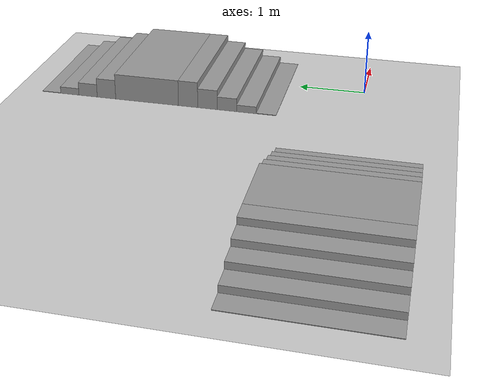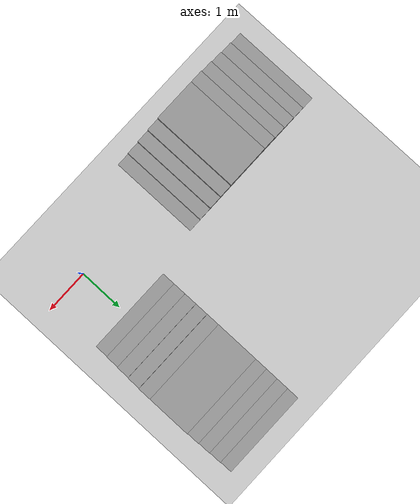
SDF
<sdf version="1.7">
 <world name="default">
  <model name="ground_plane">
   <static>1</static>
   <link name="link">
    <collision name="collision">
     <geometry><plane><normal>0 0 1</normal><size>100 100</size></plane></geometry>
     <surface><friction><ode><mu>100</mu><mu2>50</mu2></ode></friction></surface>
    </collision>
    <visual name="visual">
     <cast_shadows>0</cast_shadows>
     <geometry><plane><normal>0 0 1</normal><size>100 100</size></plane></geometry>
     <material>
      <script><uri>file://media/materials/scripts/gazebo.material</uri><name>Gazebo/Grey</name></script>
     </material>
    </visual>
   </link>
  </model>
  <model name="10cm">
   <link name="link_0">
    <inertial>
     <mass>1</mass>
     <inertia>
      <ixx>0.166667</ixx>
      <ixy>0</ixy>
      <ixz>0</ixz>
      <iyy>0.166667</iyy>
      <iyz>0</iyz>
      <izz>0.166667</izz>
     </inertia>
    </inertial>
    <pose>-1.665 0 -0.1 0 -0 0</pose>
    <kinematic>1</kinematic>
    <visual name="visual">
     <geometry><box><size>0.3 2 0.1</size></box></geometry>
     <material>
      <lighting>1</lighting>
      <script><uri>file://media/materials/scripts/gazebo.material</uri><name>Gazebo/Grey</name></script>
      <shader type="pixel"><normal_map>__default__</normal_map></shader>
      <ambient>0.3 0.3 0.3 1</ambient>
      <diffuse>0.7 0.7 0.7 1</diffuse>
      <specular>0.01 0.01 0.01 1</specular>
      <emissive>0 0 0 1</emissive>
     </material>
    </visual>
    <collision name="collision">
     <geometry><box><size>0.3 2 0.1</size></box></geometry>
     <surface>
      <friction>
       <ode><mu>1</mu><mu2>1</mu2><fdir1>0 0 0</fdir1><slip1>0</slip1><slip2>0</slip2></ode>
       <torsional>
        <coefficient>1</coefficient>
        <patch_radius>0</patch_radius>
        <surface_radius>0</surface_radius>
        <use_patch_radius>1</use_patch_radius>
        <ode><slip>0</slip></ode>
       </torsional>
      </friction>
      <bounce><restitution_coefficient>0</restitution_coefficient><threshold>1e+06</threshold></bounce>
      <contact>
       <collide_without_contact>0</collide_without_contact>
       <collide_without_contact_bitmask>1</collide_without_contact_bitmask>
       <collide_bitmask>1</collide_bitmask>
       <ode>
        <soft_cfm>0</soft_cfm>
        <soft_erp>0.2</soft_erp>
        <kp>1e+13</kp>
        <kd>1</kd>
        <max_vel>0.01</max_vel>
        <min_depth>0</min_depth>
       </ode>
       <bullet>
        <split_impulse>1</split_impulse>
        <split_impulse_penetration_threshold>-0.01</split_impulse_penetration_threshold>
        <soft_cfm>0</soft_cfm>
        <soft_erp>0.2</soft_erp>
        <kp>1e+13</kp>
        <kd>1</kd>
       </bullet>
      </contact>
     </surface>
    </collision>
   </link>
   <link name="link_0_clone">
    <inertial>
     <mass>1</mass>
     <inertia>
      <ixx>0.166667</ixx>
      <ixy>0</ixy>
      <ixz>0</ixz>
      <iyy>0.166667</iyy>
      <iyz>0</iyz>
      <izz>0.166667</izz>
     </inertia>
    </inertial>
    <pose>-1.365 0 -0.05 0 -0 0</pose>
    <kinematic>1</kinematic>
    <visual name="visual">
     <geometry><box><size>0.3 2 0.2</size></box></geometry>
     <material>
      <lighting>1</lighting>
      <script><uri>file://media/materials/scripts/gazebo.material</uri><name>Gazebo/Grey</name></script>
      <shader type="pixel"><normal_map>__default__</normal_map></shader>
      <ambient>0.3 0.3 0.3 1</ambient>
      <diffuse>0.7 0.7 0.7 1</diffuse>
      <specular>0.01 0.01 0.01 1</specular>
      <emissive>0 0 0 1</emissive>
     </material>
    </visual>
    <collision name="collision">
     <geometry><box><size>0.3 2 0.2</size></box></geometry>
     <surface>
      <friction>
       <ode><mu>1</mu><mu2>1</mu2><fdir1>0 0 0</fdir1><slip1>0</slip1><slip2>0</slip2></ode>
       <torsional>
        <coefficient>1</coefficient>
        <patch_radius>0</patch_radius>
        <surface_radius>0</surface_radius>
        <use_patch_radius>1</use_patch_radius>
        <ode><slip>0</slip></ode>
       </torsional>
      </friction>
      <bounce><restitution_coefficient>0</restitution_coefficient><threshold>1e+06</threshold></bounce>
      <contact>
       <collide_without_contact>0</collide_without_contact>
       <collide_without_contact_bitmask>1</collide_without_contact_bitmask>
       <collide_bitmask>1</collide_bitmask>
       <ode>
        <soft_cfm>0</soft_cfm>
        <soft_erp>0.2</soft_erp>
        <kp>1e+13</kp>
        <kd>1</kd>
        <max_vel>0.01</max_vel>
        <min_depth>0</min_depth>
       </ode>
       <bullet>
        <split_impulse>1</split_impulse>
        <split_impulse_penetration_threshold>-0.01</split_impulse_penetration_threshold>
        <soft_cfm>0</soft_cfm>
        <soft_erp>0.2</soft_erp>
        <kp>1e+13</kp>
        <kd>1</kd>
       </bullet>
      </contact>
     </surface>
    </collision>
   </link>
   <link name="link_0_clone_0">
    <inertial>
     <mass>1</mass>
     <inertia>
      <ixx>0.166667</ixx>
      <ixy>0</ixy>
      <ixz>0</ixz>
      <iyy>0.166667</iyy>
      <iyz>0</iyz>
      <izz>0.166667</izz>
     </inertia>
    </inertial>
    <pose>1.735 0 -0.1 0 -0 0</pose>
    <kinematic>1</kinematic>
    <visual name="visual">
     <geometry><box><size>0.3 2 0.1</size></box></geometry>
     <material>
      <lighting>1</lighting>
      <script><uri>file://media/materials/scripts/gazebo.material</uri><name>Gazebo/Grey</name></script>
      <shader type="pixel"><normal_map>__default__</normal_map></shader>
      <ambient>0.3 0.3 0.3 1</ambient>
      <diffuse>0.7 0.7 0.7 1</diffuse>
      <specular>0.01 0.01 0.01 1</specular>
      <emissive>0 0 0 1</emissive>
     </material>
    </visual>
    <collision name="collision">
     <geometry><box><size>0.3 2 0.1</size></box></geometry>
     <surface>
      <friction>
       <ode><mu>1</mu><mu2>1</mu2><fdir1>0 0 0</fdir1><slip1>0</slip1><slip2>0</slip2></ode>
       <torsional>
        <coefficient>1</coefficient>
        <patch_radius>0</patch_radius>
        <surface_radius>0</surface_radius>
        <use_patch_radius>1</use_patch_radius>
        <ode><slip>0</slip></ode>
       </torsional>
      </friction>
      <bounce><restitution_coefficient>0</restitution_coefficient><threshold>1e+06</threshold></bounce>
      <contact>
       <collide_without_contact>0</collide_without_contact>
       <collide_without_contact_bitmask>1</collide_without_contact_bitmask>
       <collide_bitmask>1</collide_bitmask>
       <ode>
        <soft_cfm>0</soft_cfm>
        <soft_erp>0.2</soft_erp>
        <kp>1e+13</kp>
        <kd>1</kd>
        <max_vel>0.01</max_vel>
        <min_depth>0</min_depth>
       </ode>
       <bullet>
        <split_impulse>1</split_impulse>
        <split_impulse_penetration_threshold>-0.01</split_impulse_penetration_threshold>
        <soft_cfm>0</soft_cfm>
        <soft_erp>0.2</soft_erp>
        <kp>1e+13</kp>
        <kd>1</kd>
       </bullet>
      </contact>
     </surface>
    </collision>
   </link>
   <link name="link_0_clone_clone">
    <inertial>
     <mass>1</mass>
     <inertia>
      <ixx>0.166667</ixx>
      <ixy>0</ixy>
      <ixz>0</ixz>
      <iyy>0.166667</iyy>
      <iyz>0</iyz>
      <izz>0.166667</izz>
     </inertia>
    </inertial>
    <pose>-1.065 0 0 0 -0 0</pose>
    <kinematic>1</kinematic>
    <visual name="visual">
     <geometry><box><size>0.3 2 0.3</size></box></geometry>
     <material>
      <lighting>1</lighting>
      <script><uri>file://media/materials/scripts/gazebo.material</uri><name>Gazebo/Grey</name></script>
      <shader type="pixel"><normal_map>__default__</normal_map></shader>
      <ambient>0.3 0.3 0.3 1</ambient>
      <diffuse>0.7 0.7 0.7 1</diffuse>
      <specular>0.01 0.01 0.01 1</specular>
      <emissive>0 0 0 1</emissive>
     </material>
    </visual>
    <collision name="collision">
     <geometry><box><size>0.3 2 0.3</size></box></geometry>
     <surface>
      <friction>
       <ode><mu>1</mu><mu2>1</mu2><fdir1>0 0 0</fdir1><slip1>0</slip1><slip2>0</slip2></ode>
       <torsional>
        <coefficient>1</coefficient>
        <patch_radius>0</patch_radius>
        <surface_radius>0</surface_radius>
        <use_patch_radius>1</use_patch_radius>
        <ode><slip>0</slip></ode>
       </torsional>
      </friction>
      <bounce><restitution_coefficient>0</restitution_coefficient><threshold>1e+06</threshold></bounce>
      <contact>
       <collide_without_contact>0</collide_without_contact>
       <collide_without_contact_bitmask>1</collide_without_contact_bitmask>
       <collide_bitmask>1</collide_bitmask>
       <ode>
        <soft_cfm>0</soft_cfm>
        <soft_erp>0.2</soft_erp>
        <kp>1e+13</kp>
        <kd>1</kd>
        <max_vel>0.01</max_vel>
        <min_depth>0</min_depth>
       </ode>
       <bullet>
        <split_impulse>1</split_impulse>
        <split_impulse_penetration_threshold>-0.01</split_impulse_penetration_threshold>
        <soft_cfm>0</soft_cfm>
        <soft_erp>0.2</soft_erp>
        <kp>1e+13</kp>
        <kd>1</kd>
       </bullet>
      </contact>
     </surface>
    </collision>
   </link>
   <link name="link_0_clone_clone_0">
    <inertial>
     <mass>1</mass>
     <inertia>
      <ixx>0.166667</ixx>
      <ixy>0</ixy>
      <ixz>0</ixz>
      <iyy>0.166667</iyy>
      <iyz>0</iyz>
      <izz>0.166667</izz>
     </inertia>
    </inertial>
    <pose>1.435 0 -0.05 0 -0 0</pose>
    <kinematic>1</kinematic>
    <visual name="visual">
     <geometry><box><size>0.3 2 0.2</size></box></geometry>
     <material>
      <lighting>1</lighting>
      <script><uri>file://media/materials/scripts/gazebo.material</uri><name>Gazebo/Grey</name></script>
      <shader type="pixel"><normal_map>__default__</normal_map></shader>
      <ambient>0.3 0.3 0.3 1</ambient>
      <diffuse>0.7 0.7 0.7 1</diffuse>
      <specular>0.01 0.01 0.01 1</specular>
      <emissive>0 0 0 1</emissive>
     </material>
    </visual>
    <collision name="collision">
     <geometry><box><size>0.3 2 0.2</size></box></geometry>
     <surface>
      <friction>
       <ode><mu>1</mu><mu2>1</mu2><fdir1>0 0 0</fdir1><slip1>0</slip1><slip2>0</slip2></ode>
       <torsional>
        <coefficient>1</coefficient>
        <patch_radius>0</patch_radius>
        <surface_radius>0</surface_radius>
        <use_patch_radius>1</use_patch_radius>
        <ode><slip>0</slip></ode>
       </torsional>
      </friction>
      <bounce><restitution_coefficient>0</restitution_coefficient><threshold>1e+06</threshold></bounce>
      <contact>
       <collide_without_contact>0</collide_without_contact>
       <collide_without_contact_bitmask>1</collide_without_contact_bitmask>
       <collide_bitmask>1</collide_bitmask>
       <ode>
        <soft_cfm>0</soft_cfm>
        <soft_erp>0.2</soft_erp>
        <kp>1e+13</kp>
        <kd>1</kd>
        <max_vel>0.01</max_vel>
        <min_depth>0</min_depth>
       </ode>
       <bullet>
        <split_impulse>1</split_impulse>
        <split_impulse_penetration_threshold>-0.01</split_impulse_penetration_threshold>
        <soft_cfm>0</soft_cfm>
        <soft_erp>0.2</soft_erp>
        <kp>1e+13</kp>
        <kd>1</kd>
       </bullet>
      </contact>
     </surface>
    </collision>
   </link>
   <link name="link_0_clone_clone_clone">
    <inertial>
     <mass>1</mass>
     <inertia>
      <ixx>0.166667</ixx>
      <ixy>0</ixy>
      <ixz>0</ixz>
      <iyy>0.166667</iyy>
      <iyz>0</iyz>
      <izz>0.166667</izz>
     </inertia>
    </inertial>
    <pose>-0.765 0 0.05 0 -0 0</pose>
    <kinematic>1</kinematic>
    <visual name="visual">
     <geometry><box><size>0.3 2 0.4</size></box></geometry>
     <material>
      <lighting>1</lighting>
      <script><uri>file://media/materials/scripts/gazebo.material</uri><name>Gazebo/Grey</name></script>
      <shader type="pixel"><normal_map>__default__</normal_map></shader>
      <ambient>0.3 0.3 0.3 1</ambient>
      <diffuse>0.7 0.7 0.7 1</diffuse>
      <specular>0.01 0.01 0.01 1</specular>
      <emissive>0 0 0 1</emissive>
     </material>
    </visual>
    <collision name="collision">
     <geometry><box><size>0.3 2 0.4</size></box></geometry>
     <surface>
      <friction>
       <ode><mu>1</mu><mu2>1</mu2><fdir1>0 0 0</fdir1><slip1>0</slip1><slip2>0</slip2></ode>
       <torsional>
        <coefficient>1</coefficient>
        <patch_radius>0</patch_radius>
        <surface_radius>0</surface_radius>
        <use_patch_radius>1</use_patch_radius>
        <ode><slip>0</slip></ode>
       </torsional>
      </friction>
      <bounce><restitution_coefficient>0</restitution_coefficient><threshold>1e+06</threshold></bounce>
      <contact>
       <collide_without_contact>0</collide_without_contact>
       <collide_without_contact_bitmask>1</collide_without_contact_bitmask>
       <collide_bitmask>1</collide_bitmask>
       <ode>
        <soft_cfm>0</soft_cfm>
        <soft_erp>0.2</soft_erp>
        <kp>1e+13</kp>
        <kd>1</kd>
        <max_vel>0.01</max_vel>
        <min_depth>0</min_depth>
       </ode>
       <bullet>
        <split_impulse>1</split_impulse>
        <split_impulse_penetration_threshold>-0.01</split_impulse_penetration_threshold>
        <soft_cfm>0</soft_cfm>
        <soft_erp>0.2</soft_erp>
        <kp>1e+13</kp>
        <kd>1</kd>
       </bullet>
      </contact>
     </surface>
    </collision>
   </link>
   <link name="link_0_clone_clone_clone_0">
    <inertial>
     <mass>1</mass>
     <inertia>
      <ixx>0.166667</ixx>
      <ixy>0</ixy>
      <ixz>0</ixz>
      <iyy>0.166667</iyy>
      <iyz>0</iyz>
      <izz>0.166667</izz>
     </inertia>
    </inertial>
    <pose>1.135 0 0 0 -0 0</pose>
    <kinematic>1</kinematic>
    <visual name="visual">
     <geometry><box><size>0.3 2 0.3</size></box></geometry>
     <material>
      <lighting>1</lighting>
      <script><uri>file://media/materials/scripts/gazebo.material</uri><name>Gazebo/Grey</name></script>
      <shader type="pixel"><normal_map>__default__</normal_map></shader>
      <ambient>0.3 0.3 0.3 1</ambient>
      <diffuse>0.7 0.7 0.7 1</diffuse>
      <specular>0.01 0.01 0.01 1</specular>
      <emissive>0 0 0 1</emissive>
     </material>
    </visual>
    <collision name="collision">
     <geometry><box><size>0.3 2 0.3</size></box></geometry>
     <surface>
      <friction>
       <ode><mu>1</mu><mu2>1</mu2><fdir1>0 0 0</fdir1><slip1>0</slip1><slip2>0</slip2></ode>
       <torsional>
        <coefficient>1</coefficient>
        <patch_radius>0</patch_radius>
        <surface_radius>0</surface_radius>
        <use_patch_radius>1</use_patch_radius>
        <ode><slip>0</slip></ode>
       </torsional>
      </friction>
      <bounce><restitution_coefficient>0</restitution_coefficient><threshold>1e+06</threshold></bounce>
      <contact>
       <collide_without_contact>0</collide_without_contact>
       <collide_without_contact_bitmask>1</collide_without_contact_bitmask>
       <collide_bitmask>1</collide_bitmask>
       <ode>
        <soft_cfm>0</soft_cfm>
        <soft_erp>0.2</soft_erp>
        <kp>1e+13</kp>
        <kd>1</kd>
        <max_vel>0.01</max_vel>
        <min_depth>0</min_depth>
       </ode>
       <bullet>
        <split_impulse>1</split_impulse>
        <split_impulse_penetration_threshold>-0.01</split_impulse_penetration_threshold>
        <soft_cfm>0</soft_cfm>
        <soft_erp>0.2</soft_erp>
        <kp>1e+13</kp>
        <kd>1</kd>
       </bullet>
      </contact>
     </surface>
    </collision>
   </link>
   <link name="link_0_clone_clone_clone_clone">
    <inertial>
     <mass>1</mass>
     <inertia>
      <ixx>0.166667</ixx>
      <ixy>0</ixy>
      <ixz>0</ixz>
      <iyy>0.166667</iyy>
      <iyz>0</iyz>
      <izz>0.166667</izz>
     </inertia>
    </inertial>
    <pose>-0.465 0 0.1 0 -0 0</pose>
    <kinematic>1</kinematic>
    <visual name="visual">
     <geometry><box><size>0.3 2 0.5</size></box></geometry>
     <material>
      <lighting>1</lighting>
      <script><uri>file://media/materials/scripts/gazebo.material</uri><name>Gazebo/Grey</name></script>
      <shader type="pixel"><normal_map>__default__</normal_map></shader>
      <ambient>0.3 0.3 0.3 1</ambient>
      <diffuse>0.7 0.7 0.7 1</diffuse>
      <specular>0.01 0.01 0.01 1</specular>
      <emissive>0 0 0 1</emissive>
     </material>
    </visual>
    <collision name="collision">
     <geometry><box><size>0.3 2 0.5</size></box></geometry>
     <surface>
      <friction>
       <ode><mu>1</mu><mu2>1</mu2><fdir1>0 0 0</fdir1><slip1>0</slip1><slip2>0</slip2></ode>
       <torsional>
        <coefficient>1</coefficient>
        <patch_radius>0</patch_radius>
        <surface_radius>0</surface_radius>
        <use_patch_radius>1</use_patch_radius>
        <ode><slip>0</slip></ode>
       </torsional>
      </friction>
      <bounce><restitution_coefficient>0</restitution_coefficient><threshold>1e+06</threshold></bounce>
      <contact>
       <collide_without_contact>0</collide_without_contact>
       <collide_without_contact_bitmask>1</collide_without_contact_bitmask>
       <collide_bitmask>1</collide_bitmask>
       <ode>
        <soft_cfm>0</soft_cfm>
        <soft_erp>0.2</soft_erp>
        <kp>1e+13</kp>
        <kd>1</kd>
        <max_vel>0.01</max_vel>
        <min_depth>0</min_depth>
       </ode>
       <bullet>
        <split_impulse>1</split_impulse>
        <split_impulse_penetration_threshold>-0.01</split_impulse_penetration_threshold>
        <soft_cfm>0</soft_cfm>
        <soft_erp>0.2</soft_erp>
        <kp>1e+13</kp>
        <kd>1</kd>
       </bullet>
      </contact>
     </surface>
    </collision>
   </link>
   <link name="link_0_clone_clone_clone_clone_0">
    <inertial>
     <mass>1</mass>
     <inertia>
      <ixx>0.166667</ixx>
      <ixy>0</ixy>
      <ixz>0</ixz>
      <iyy>0.166667</iyy>
      <iyz>0</iyz>
      <izz>0.166667</izz>
     </inertia>
    </inertial>
    <pose>0.835 0 0.05 0 -0 0</pose>
    <kinematic>1</kinematic>
    <visual name="visual">
     <geometry><box><size>0.3 2 0.4</size></box></geometry>
     <material>
      <lighting>1</lighting>
      <script><uri>file://media/materials/scripts/gazebo.material</uri><name>Gazebo/Grey</name></script>
      <shader type="pixel"><normal_map>__default__</normal_map></shader>
      <ambient>0.3 0.3 0.3 1</ambient>
      <diffuse>0.7 0.7 0.7 1</diffuse>
      <specular>0.01 0.01 0.01 1</specular>
      <emissive>0 0 0 1</emissive>
     </material>
    </visual>
    <collision name="collision">
     <geometry><box><size>0.3 2 0.4</size></box></geometry>
     <surface>
      <friction>
       <ode><mu>1</mu><mu2>1</mu2><fdir1>0 0 0</fdir1><slip1>0</slip1><slip2>0</slip2></ode>
       <torsional>
        <coefficient>1</coefficient>
        <patch_radius>0</patch_radius>
        <surface_radius>0</surface_radius>
        <use_patch_radius>1</use_patch_radius>
        <ode><slip>0</slip></ode>
       </torsional>
      </friction>
      <bounce><restitution_coefficient>0</restitution_coefficient><threshold>1e+06</threshold></bounce>
      <contact>
       <collide_without_contact>0</collide_without_contact>
       <collide_without_contact_bitmask>1</collide_without_contact_bitmask>
       <collide_bitmask>1</collide_bitmask>
       <ode>
        <soft_cfm>0</soft_cfm>
        <soft_erp>0.2</soft_erp>
        <kp>1e+13</kp>
        <kd>1</kd>
        <max_vel>0.01</max_vel>
        <min_depth>0</min_depth>
       </ode>
       <bullet>
        <split_impulse>1</split_impulse>
        <split_impulse_penetration_threshold>-0.01</split_impulse_penetration_threshold>
        <soft_cfm>0</soft_cfm>
        <soft_erp>0.2</soft_erp>
        <kp>1e+13</kp>
        <kd>1</kd>
       </bullet>
      </contact>
     </surface>
    </collision>
   </link>
   <link name="link_0_clone_clone_clone_clone_clone">
    <inertial>
     <mass>1</mass>
     <inertia>
      <ixx>0.166667</ixx>
      <ixy>0</ixy>
      <ixz>0</ixz>
      <iyy>0.166667</iyy>
      <iyz>0</iyz>
      <izz>0.166667</izz>
     </inertia>
    </inertial>
    <pose>0.185 0 0.1 0 -0 0</pose>
    <kinematic>1</kinematic>
    <visual name="visual">
     <geometry><box><size>1 2 0.5</size></box></geometry>
     <material>
      <lighting>1</lighting>
      <script><uri>file://media/materials/scripts/gazebo.material</uri><name>Gazebo/Grey</name></script>
      <shader type="pixel"><normal_map>__default__</normal_map></shader>
      <ambient>0.3 0.3 0.3 1</ambient>
      <diffuse>0.7 0.7 0.7 1</diffuse>
      <specular>0.01 0.01 0.01 1</specular>
      <emissive>0 0 0 1</emissive>
     </material>
    </visual>
    <collision name="collision">
     <geometry><box><size>1 2 0.5</size></box></geometry>
     <surface>
      <friction>
       <ode><mu>1</mu><mu2>1</mu2><fdir1>0 0 0</fdir1><slip1>0</slip1><slip2>0</slip2></ode>
       <torsional>
        <coefficient>1</coefficient>
        <patch_radius>0</patch_radius>
        <surface_radius>0</surface_radius>
        <use_patch_radius>1</use_patch_radius>
        <ode><slip>0</slip></ode>
       </torsional>
      </friction>
      <bounce><restitution_coefficient>0</restitution_coefficient><threshold>1e+06</threshold></bounce>
      <contact>
       <collide_without_contact>0</collide_without_contact>
       <collide_without_contact_bitmask>1</collide_without_contact_bitmask>
       <collide_bitmask>1</collide_bitmask>
       <ode>
        <soft_cfm>0</soft_cfm>
        <soft_erp>0.2</soft_erp>
        <kp>1e+13</kp>
        <kd>1</kd>
        <max_vel>0.01</max_vel>
        <min_depth>0</min_depth>
       </ode>
       <bullet>
        <split_impulse>1</split_impulse>
        <split_impulse_penetration_threshold>-0.01</split_impulse_penetration_threshold>
        <soft_cfm>0</soft_cfm>
        <soft_erp>0.2</soft_erp>
        <kp>1e+13</kp>
        <kd>1</kd>
       </bullet>
      </contact>
     </surface>
    </collision>
   </link>
   <static>0</static>
   <pose>-0.1 3 0.05 0 -0 1.57</pose>
  </model>
  <model name="10cm_0">
   <link name="link_0">
    <inertial>
     <mass>1</mass>
     <inertia>
      <ixx>0.166667</ixx>
      <ixy>0</ixy>
      <ixz>0</ixz>
      <iyy>0.166667</iyy>
      <iyz>0</iyz>
      <izz>0.166667</izz>
     </inertia>
    </inertial>
    <pose>-1.665 0 -0.1 0 -0 0</pose>
    <kinematic>1</kinematic>
    <visual name="visual">
     <geometry><box><size>0.3 2 0.1</size></box></geometry>
     <material>
      <lighting>1</lighting>
      <script><uri>file://media/materials/scripts/gazebo.material</uri><name>Gazebo/Grey</name></script>
      <shader type="pixel"><normal_map>__default__</normal_map></shader>
      <ambient>0.3 0.3 0.3 1</ambient>
      <diffuse>0.7 0.7 0.7 1</diffuse>
      <specular>0.01 0.01 0.01 1</specular>
      <emissive>0 0 0 1</emissive>
     </material>
    </visual>
    <collision name="collision">
     <geometry><box><size>0.3 2 0.1</size></box></geometry>
     <surface>
      <friction>
       <ode><mu>1</mu><mu2>1</mu2><fdir1>0 0 0</fdir1><slip1>0</slip1><slip2>0</slip2></ode>
       <torsional>
        <coefficient>1</coefficient>
        <patch_radius>0</patch_radius>
        <surface_radius>0</surface_radius>
        <use_patch_radius>1</use_patch_radius>
        <ode><slip>0</slip></ode>
       </torsional>
      </friction>
      <bounce><restitution_coefficient>0</restitution_coefficient><threshold>1e+06</threshold></bounce>
      <contact>
       <collide_without_contact>0</collide_without_contact>
       <collide_without_contact_bitmask>1</collide_without_contact_bitmask>
       <collide_bitmask>1</collide_bitmask>
       <ode>
        <soft_cfm>0</soft_cfm>
        <soft_erp>0.2</soft_erp>
        <kp>1e+13</kp>
        <kd>1</kd>
        <max_vel>0.01</max_vel>
        <min_depth>0</min_depth>
       </ode>
       <bullet>
        <split_impulse>1</split_impulse>
        <split_impulse_penetration_threshold>-0.01</split_impulse_penetration_threshold>
        <soft_cfm>0</soft_cfm>
        <soft_erp>0.2</soft_erp>
        <kp>1e+13</kp>
        <kd>1</kd>
       </bullet>
      </contact>
     </surface>
    </collision>
   </link>
   <link name="link_0_clone">
    <inertial>
     <mass>1</mass>
     <inertia>
      <ixx>0.166667</ixx>
      <ixy>0</ixy>
      <ixz>0</ixz>
      <iyy>0.166667</iyy>
      <iyz>0</iyz>
      <izz>0.166667</izz>
     </inertia>
    </inertial>
    <pose>-1.365 0 -0.05 0 -0 0</pose>
    <kinematic>1</kinematic>
    <visual name="visual">
     <geometry><box><size>0.3 2 0.2</size></box></geometry>
     <material>
      <lighting>1</lighting>
      <script><uri>file://media/materials/scripts/gazebo.material</uri><name>Gazebo/Grey</name></script>
      <shader type="pixel"><normal_map>__default__</normal_map></shader>
      <ambient>0.3 0.3 0.3 1</ambient>
      <diffuse>0.7 0.7 0.7 1</diffuse>
      <specular>0.01 0.01 0.01 1</specular>
      <emissive>0 0 0 1</emissive>
     </material>
    </visual>
    <collision name="collision">
     <geometry><box><size>0.3 2 0.2</size></box></geometry>
     <surface>
      <friction>
       <ode><mu>1</mu><mu2>1</mu2><fdir1>0 0 0</fdir1><slip1>0</slip1><slip2>0</slip2></ode>
       <torsional>
        <coefficient>1</coefficient>
        <patch_radius>0</patch_radius>
        <surface_radius>0</surface_radius>
        <use_patch_radius>1</use_patch_radius>
        <ode><slip>0</slip></ode>
       </torsional>
      </friction>
      <bounce><restitution_coefficient>0</restitution_coefficient><threshold>1e+06</threshold></bounce>
      <contact>
       <collide_without_contact>0</collide_without_contact>
       <collide_without_contact_bitmask>1</collide_without_contact_bitmask>
       <collide_bitmask>1</collide_bitmask>
       <ode>
        <soft_cfm>0</soft_cfm>
        <soft_erp>0.2</soft_erp>
        <kp>1e+13</kp>
        <kd>1</kd>
        <max_vel>0.01</max_vel>
        <min_depth>0</min_depth>
       </ode>
       <bullet>
        <split_impulse>1</split_impulse>
        <split_impulse_penetration_threshold>-0.01</split_impulse_penetration_threshold>
        <soft_cfm>0</soft_cfm>
        <soft_erp>0.2</soft_erp>
        <kp>1e+13</kp>
        <kd>1</kd>
       </bullet>
      </contact>
     </surface>
    </collision>
   </link>
   <link name="link_0_clone_0">
    <inertial>
     <mass>1</mass>
     <inertia>
      <ixx>0.166667</ixx>
      <ixy>0</ixy>
      <ixz>0</ixz>
      <iyy>0.166667</iyy>
      <iyz>0</iyz>
      <izz>0.166667</izz>
     </inertia>
    </inertial>
    <pose>1.735 0 -0.1 0 -0 0</pose>
    <kinematic>1</kinematic>
    <visual name="visual">
     <geometry><box><size>0.3 2 0.1</size></box></geometry>
     <material>
      <lighting>1</lighting>
      <script><uri>file://media/materials/scripts/gazebo.material</uri><name>Gazebo/Grey</name></script>
      <shader type="pixel"><normal_map>__default__</normal_map></shader>
      <ambient>0.3 0.3 0.3 1</ambient>
      <diffuse>0.7 0.7 0.7 1</diffuse>
      <specular>0.01 0.01 0.01 1</specular>
      <emissive>0 0 0 1</emissive>
     </material>
    </visual>
    <collision name="collision">
     <geometry><box><size>0.3 2 0.1</size></box></geometry>
     <surface>
      <friction>
       <ode><mu>1</mu><mu2>1</mu2><fdir1>0 0 0</fdir1><slip1>0</slip1><slip2>0</slip2></ode>
       <torsional>
        <coefficient>1</coefficient>
        <patch_radius>0</patch_radius>
        <surface_radius>0</surface_radius>
        <use_patch_radius>1</use_patch_radius>
        <ode><slip>0</slip></ode>
       </torsional>
      </friction>
      <bounce><restitution_coefficient>0</restitution_coefficient><threshold>1e+06</threshold></bounce>
      <contact>
       <collide_without_contact>0</collide_without_contact>
       <collide_without_contact_bitmask>1</collide_without_contact_bitmask>
       <collide_bitmask>1</collide_bitmask>
       <ode>
        <soft_cfm>0</soft_cfm>
        <soft_erp>0.2</soft_erp>
        <kp>1e+13</kp>
        <kd>1</kd>
        <max_vel>0.01</max_vel>
        <min_depth>0</min_depth>
       </ode>
       <bullet>
        <split_impulse>1</split_impulse>
        <split_impulse_penetration_threshold>-0.01</split_impulse_penetration_threshold>
        <soft_cfm>0</soft_cfm>
        <soft_erp>0.2</soft_erp>
        <kp>1e+13</kp>
        <kd>1</kd>
       </bullet>
      </contact>
     </surface>
    </collision>
   </link>
   <link name="link_0_clone_clone">
    <inertial>
     <mass>1</mass>
     <inertia>
      <ixx>0.166667</ixx>
      <ixy>0</ixy>
      <ixz>0</ixz>
      <iyy>0.166667</iyy>
      <iyz>0</iyz>
      <izz>0.166667</izz>
     </inertia>
    </inertial>
    <pose>-1.065 0 0 0 -0 0</pose>
    <kinematic>1</kinematic>
    <visual name="visual">
     <geometry><box><size>0.3 2 0.3</size></box></geometry>
     <material>
      <lighting>1</lighting>
      <script><uri>file://media/materials/scripts/gazebo.material</uri><name>Gazebo/Grey</name></script>
      <shader type="pixel"><normal_map>__default__</normal_map></shader>
      <ambient>0.3 0.3 0.3 1</ambient>
      <diffuse>0.7 0.7 0.7 1</diffuse>
      <specular>0.01 0.01 0.01 1</specular>
      <emissive>0 0 0 1</emissive>
     </material>
    </visual>
    <collision name="collision">
     <geometry><box><size>0.3 2 0.3</size></box></geometry>
     <surface>
      <friction>
       <ode><mu>1</mu><mu2>1</mu2><fdir1>0 0 0</fdir1><slip1>0</slip1><slip2>0</slip2></ode>
       <torsional>
        <coefficient>1</coefficient>
        <patch_radius>0</patch_radius>
        <surface_radius>0</surface_radius>
        <use_patch_radius>1</use_patch_radius>
        <ode><slip>0</slip></ode>
       </torsional>
      </friction>
      <bounce><restitution_coefficient>0</restitution_coefficient><threshold>1e+06</threshold></bounce>
      <contact>
       <collide_without_contact>0</collide_without_contact>
       <collide_without_contact_bitmask>1</collide_without_contact_bitmask>
       <collide_bitmask>1</collide_bitmask>
       <ode>
        <soft_cfm>0</soft_cfm>
        <soft_erp>0.2</soft_erp>
        <kp>1e+13</kp>
        <kd>1</kd>
        <max_vel>0.01</max_vel>
        <min_depth>0</min_depth>
       </ode>
       <bullet>
        <split_impulse>1</split_impulse>
        <split_impulse_penetration_threshold>-0.01</split_impulse_penetration_threshold>
        <soft_cfm>0</soft_cfm>
        <soft_erp>0.2</soft_erp>
        <kp>1e+13</kp>
        <kd>1</kd>
       </bullet>
      </contact>
     </surface>
    </collision>
   </link>
   <link name="link_0_clone_clone_0">
    <inertial>
     <mass>1</mass>
     <inertia>
      <ixx>0.166667</ixx>
      <ixy>0</ixy>
      <ixz>0</ixz>
      <iyy>0.166667</iyy>
      <iyz>0</iyz>
      <izz>0.166667</izz>
     </inertia>
    </inertial>
    <pose>1.435 0 -0.05 0 -0 0</pose>
    <kinematic>1</kinematic>
    <visual name="visual">
     <geometry><box><size>0.3 2 0.2</size></box></geometry>
     <material>
      <lighting>1</lighting>
      <script><uri>file://media/materials/scripts/gazebo.material</uri><name>Gazebo/Grey</name></script>
      <shader type="pixel"><normal_map>__default__</normal_map></shader>
      <ambient>0.3 0.3 0.3 1</ambient>
      <diffuse>0.7 0.7 0.7 1</diffuse>
      <specular>0.01 0.01 0.01 1</specular>
      <emissive>0 0 0 1</emissive>
     </material>
    </visual>
    <collision name="collision">
     <geometry><box><size>0.3 2 0.2</size></box></geometry>
     <surface>
      <friction>
       <ode><mu>1</mu><mu2>1</mu2><fdir1>0 0 0</fdir1><slip1>0</slip1><slip2>0</slip2></ode>
       <torsional>
        <coefficient>1</coefficient>
        <patch_radius>0</patch_radius>
        <surface_radius>0</surface_radius>
        <use_patch_radius>1</use_patch_radius>
        <ode><slip>0</slip></ode>
       </torsional>
      </friction>
      <bounce><restitution_coefficient>0</restitution_coefficient><threshold>1e+06</threshold></bounce>
      <contact>
       <collide_without_contact>0</collide_without_contact>
       <collide_without_contact_bitmask>1</collide_without_contact_bitmask>
       <collide_bitmask>1</collide_bitmask>
       <ode>
        <soft_cfm>0</soft_cfm>
        <soft_erp>0.2</soft_erp>
        <kp>1e+13</kp>
        <kd>1</kd>
        <max_vel>0.01</max_vel>
        <min_depth>0</min_depth>
       </ode>
       <bullet>
        <split_impulse>1</split_impulse>
        <split_impulse_penetration_threshold>-0.01</split_impulse_penetration_threshold>
        <soft_cfm>0</soft_cfm>
        <soft_erp>0.2</soft_erp>
        <kp>1e+13</kp>
        <kd>1</kd>
       </bullet>
      </contact>
     </surface>
    </collision>
   </link>
   <link name="link_0_clone_clone_clone">
    <inertial>
     <mass>1</mass>
     <inertia>
      <ixx>0.166667</ixx>
      <ixy>0</ixy>
      <ixz>0</ixz>
      <iyy>0.166667</iyy>
      <iyz>0</iyz>
      <izz>0.166667</izz>
     </inertia>
    </inertial>
    <pose>-0.765 0 0.05 0 -0 0</pose>
    <kinematic>1</kinematic>
    <visual name="visual">
     <geometry><box><size>0.3 2 0.4</size></box></geometry>
     <material>
      <lighting>1</lighting>
      <script><uri>file://media/materials/scripts/gazebo.material</uri><name>Gazebo/Grey</name></script>
      <shader type="pixel"><normal_map>__default__</normal_map></shader>
      <ambient>0.3 0.3 0.3 1</ambient>
      <diffuse>0.7 0.7 0.7 1</diffuse>
      <specular>0.01 0.01 0.01 1</specular>
      <emissive>0 0 0 1</emissive>
     </material>
    </visual>
    <collision name="collision">
     <geometry><box><size>0.3 2 0.4</size></box></geometry>
     <surface>
      <friction>
       <ode><mu>1</mu><mu2>1</mu2><fdir1>0 0 0</fdir1><slip1>0</slip1><slip2>0</slip2></ode>
       <torsional>
        <coefficient>1</coefficient>
        <patch_radius>0</patch_radius>
        <surface_radius>0</surface_radius>
        <use_patch_radius>1</use_patch_radius>
        <ode><slip>0</slip></ode>
       </torsional>
      </friction>
      <bounce><restitution_coefficient>0</restitution_coefficient><threshold>1e+06</threshold></bounce>
      <contact>
       <collide_without_contact>0</collide_without_contact>
       <collide_without_contact_bitmask>1</collide_without_contact_bitmask>
       <collide_bitmask>1</collide_bitmask>
       <ode>
        <soft_cfm>0</soft_cfm>
        <soft_erp>0.2</soft_erp>
        <kp>1e+13</kp>
        <kd>1</kd>
        <max_vel>0.01</max_vel>
        <min_depth>0</min_depth>
       </ode>
       <bullet>
        <split_impulse>1</split_impulse>
        <split_impulse_penetration_threshold>-0.01</split_impulse_penetration_threshold>
        <soft_cfm>0</soft_cfm>
        <soft_erp>0.2</soft_erp>
        <kp>1e+13</kp>
        <kd>1</kd>
       </bullet>
      </contact>
     </surface>
    </collision>
   </link>
   <link name="link_0_clone_clone_clone_0">
    <inertial>
     <mass>1</mass>
     <inertia>
      <ixx>0.166667</ixx>
      <ixy>0</ixy>
      <ixz>0</ixz>
      <iyy>0.166667</iyy>
      <iyz>0</iyz>
      <izz>0.166667</izz>
     </inertia>
    </inertial>
    <pose>1.135 0 0 0 -0 0</pose>
    <kinematic>1</kinematic>
    <visual name="visual">
     <geometry><box><size>0.3 2 0.3</size></box></geometry>
     <material>
      <lighting>1</lighting>
      <script><uri>file://media/materials/scripts/gazebo.material</uri><name>Gazebo/Grey</name></script>
      <shader type="pixel"><normal_map>__default__</normal_map></shader>
      <ambient>0.3 0.3 0.3 1</ambient>
      <diffuse>0.7 0.7 0.7 1</diffuse>
      <specular>0.01 0.01 0.01 1</specular>
      <emissive>0 0 0 1</emissive>
     </material>
    </visual>
    <collision name="collision">
     <geometry><box><size>0.3 2 0.3</size></box></geometry>
     <surface>
      <friction>
       <ode><mu>1</mu><mu2>1</mu2><fdir1>0 0 0</fdir1><slip1>0</slip1><slip2>0</slip2></ode>
       <torsional>
        <coefficient>1</coefficient>
        <patch_radius>0</patch_radius>
        <surface_radius>0</surface_radius>
        <use_patch_radius>1</use_patch_radius>
        <ode><slip>0</slip></ode>
       </torsional>
      </friction>
      <bounce><restitution_coefficient>0</restitution_coefficient><threshold>1e+06</threshold></bounce>
      <contact>
       <collide_without_contact>0</collide_without_contact>
       <collide_without_contact_bitmask>1</collide_without_contact_bitmask>
       <collide_bitmask>1</collide_bitmask>
       <ode>
        <soft_cfm>0</soft_cfm>
        <soft_erp>0.2</soft_erp>
        <kp>1e+13</kp>
        <kd>1</kd>
        <max_vel>0.01</max_vel>
        <min_depth>0</min_depth>
       </ode>
       <bullet>
        <split_impulse>1</split_impulse>
        <split_impulse_penetration_threshold>-0.01</split_impulse_penetration_threshold>
        <soft_cfm>0</soft_cfm>
        <soft_erp>0.2</soft_erp>
        <kp>1e+13</kp>
        <kd>1</kd>
       </bullet>
      </contact>
     </surface>
    </collision>
   </link>
   <link name="link_0_clone_clone_clone_clone">
    <inertial>
     <mass>1</mass>
     <inertia>
      <ixx>0.166667</ixx>
      <ixy>0</ixy>
      <ixz>0</ixz>
      <iyy>0.166667</iyy>
      <iyz>0</iyz>
      <izz>0.166667</izz>
     </inertia>
    </inertial>
    <pose>-0.465 0 0.1 0 -0 0</pose>
    <kinematic>1</kinematic>
    <visual name="visual">
     <geometry><box><size>0.3 2 0.5</size></box></geometry>
     <material>
      <lighting>1</lighting>
      <script><uri>file://media/materials/scripts/gazebo.material</uri><name>Gazebo/Grey</name></script>
      <shader type="pixel"><normal_map>__default__</normal_map></shader>
      <ambient>0.3 0.3 0.3 1</ambient>
      <diffuse>0.7 0.7 0.7 1</diffuse>
      <specular>0.01 0.01 0.01 1</specular>
      <emissive>0 0 0 1</emissive>
     </material>
    </visual>
    <collision name="collision">
     <geometry><box><size>0.3 2 0.5</size></box></geometry>
     <surface>
      <friction>
       <ode><mu>1</mu><mu2>1</mu2><fdir1>0 0 0</fdir1><slip1>0</slip1><slip2>0</slip2></ode>
       <torsional>
        <coefficient>1</coefficient>
        <patch_radius>0</patch_radius>
        <surface_radius>0</surface_radius>
        <use_patch_radius>1</use_patch_radius>
        <ode><slip>0</slip></ode>
       </torsional>
      </friction>
      <bounce><restitution_coefficient>0</restitution_coefficient><threshold>1e+06</threshold></bounce>
      <contact>
       <collide_without_contact>0</collide_without_contact>
       <collide_without_contact_bitmask>1</collide_without_contact_bitmask>
       <collide_bitmask>1</collide_bitmask>
       <ode>
        <soft_cfm>0</soft_cfm>
        <soft_erp>0.2</soft_erp>
        <kp>1e+13</kp>
        <kd>1</kd>
        <max_vel>0.01</max_vel>
        <min_depth>0</min_depth>
       </ode>
       <bullet>
        <split_impulse>1</split_impulse>
        <split_impulse_penetration_threshold>-0.01</split_impulse_penetration_threshold>
        <soft_cfm>0</soft_cfm>
        <soft_erp>0.2</soft_erp>
        <kp>1e+13</kp>
        <kd>1</kd>
       </bullet>
      </contact>
     </surface>
    </collision>
   </link>
   <link name="link_0_clone_clone_clone_clone_0">
    <inertial>
     <mass>1</mass>
     <inertia>
      <ixx>0.166667</ixx>
      <ixy>0</ixy>
      <ixz>0</ixz>
      <iyy>0.166667</iyy>
      <iyz>0</iyz>
      <izz>0.166667</izz>
     </inertia>
    </inertial>
    <pose>0.835 0 0.05 0 -0 0</pose>
    <kinematic>1</kinematic>
    <visual name="visual">
     <geometry><box><size>0.3 2 0.4</size></box></geometry>
     <material>
      <lighting>1</lighting>
      <script><uri>file://media/materials/scripts/gazebo.material</uri><name>Gazebo/Grey</name></script>
      <shader type="pixel"><normal_map>__default__</normal_map></shader>
      <ambient>0.3 0.3 0.3 1</ambient>
      <diffuse>0.7 0.7 0.7 1</diffuse>
      <specular>0.01 0.01 0.01 1</specular>
      <emissive>0 0 0 1</emissive>
     </material>
    </visual>
    <collision name="collision">
     <geometry><box><size>0.3 2 0.4</size></box></geometry>
     <surface>
      <friction>
       <ode><mu>1</mu><mu2>1</mu2><fdir1>0 0 0</fdir1><slip1>0</slip1><slip2>0</slip2></ode>
       <torsional>
        <coefficient>1</coefficient>
        <patch_radius>0</patch_radius>
        <surface_radius>0</surface_radius>
        <use_patch_radius>1</use_patch_radius>
        <ode><slip>0</slip></ode>
       </torsional>
      </friction>
      <bounce><restitution_coefficient>0</restitution_coefficient><threshold>1e+06</threshold></bounce>
      <contact>
       <collide_without_contact>0</collide_without_contact>
       <collide_without_contact_bitmask>1</collide_without_contact_bitmask>
       <collide_bitmask>1</collide_bitmask>
       <ode>
        <soft_cfm>0</soft_cfm>
        <soft_erp>0.2</soft_erp>
        <kp>1e+13</kp>
        <kd>1</kd>
        <max_vel>0.01</max_vel>
        <min_depth>0</min_depth>
       </ode>
       <bullet>
        <split_impulse>1</split_impulse>
        <split_impulse_penetration_threshold>-0.01</split_impulse_penetration_threshold>
        <soft_cfm>0</soft_cfm>
        <soft_erp>0.2</soft_erp>
        <kp>1e+13</kp>
        <kd>1</kd>
       </bullet>
      </contact>
     </surface>
    </collision>
   </link>
   <link name="link_0_clone_clone_clone_clone_clone">
    <inertial>
     <mass>1</mass>
     <inertia>
      <ixx>0.166667</ixx>
      <ixy>0</ixy>
      <ixz>0</ixz>
      <iyy>0.166667</iyy>
      <iyz>0</iyz>
      <izz>0.166667</izz>
     </inertia>
    </inertial>
    <pose>0.185 0 0.1 0 -0 0</pose>
    <kinematic>1</kinematic>
    <visual name="visual">
     <geometry><box><size>1 2 0.5</size></box></geometry>
     <material>
      <lighting>1</lighting>
      <script><uri>file://media/materials/scripts/gazebo.material</uri><name>Gazebo/Grey</name></script>
      <shader type="pixel"><normal_map>__default__</normal_map></shader>
      <ambient>0.3 0.3 0.3 1</ambient>
      <diffuse>0.7 0.7 0.7 1</diffuse>
      <specular>0.01 0.01 0.01 1</specular>
      <emissive>0 0 0 1</emissive>
     </material>
    </visual>
    <collision name="collision">
     <geometry><box><size>1 2 0.5</size></box></geometry>
     <surface>
      <friction>
       <ode><mu>1</mu><mu2>1</mu2><fdir1>0 0 0</fdir1><slip1>0</slip1><slip2>0</slip2></ode>
       <torsional>
        <coefficient>1</coefficient>
        <patch_radius>0</patch_radius>
        <surface_radius>0</surface_radius>
        <use_patch_radius>1</use_patch_radius>
        <ode><slip>0</slip></ode>
       </torsional>
      </friction>
      <bounce><restitution_coefficient>0</restitution_coefficient><threshold>1e+06</threshold></bounce>
      <contact>
       <collide_without_contact>0</collide_without_contact>
       <collide_without_contact_bitmask>1</collide_without_contact_bitmask>
       <collide_bitmask>1</collide_bitmask>
       <ode>
        <soft_cfm>0</soft_cfm>
        <soft_erp>0.2</soft_erp>
        <kp>1e+13</kp>
        <kd>1</kd>
        <max_vel>0.01</max_vel>
        <min_depth>0</min_depth>
       </ode>
       <bullet>
        <split_impulse>1</split_impulse>
        <split_impulse_penetration_threshold>-0.01</split_impulse_penetration_threshold>
        <soft_cfm>0</soft_cfm>
        <soft_erp>0.2</soft_erp>
        <kp>1e+13</kp>
        <kd>1</kd>
       </bullet>
      </contact>
     </surface>
    </collision>
   </link>
   <static>0</static>
   <pose>-4 0 0.05 0 -0 0</pose>
  </model>
 </world>
</sdf>
